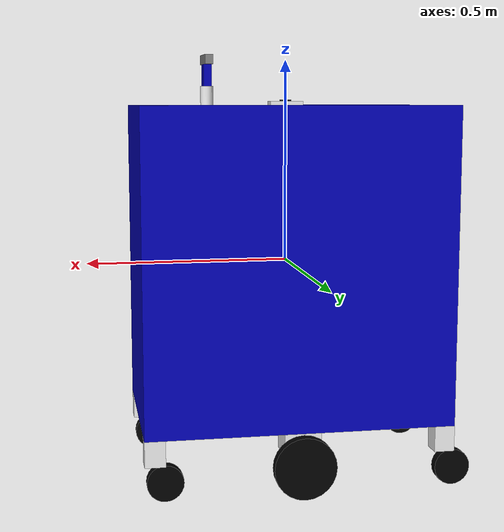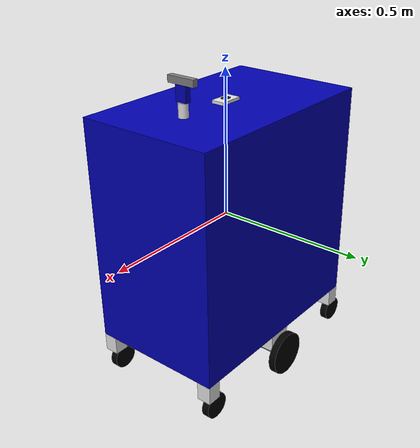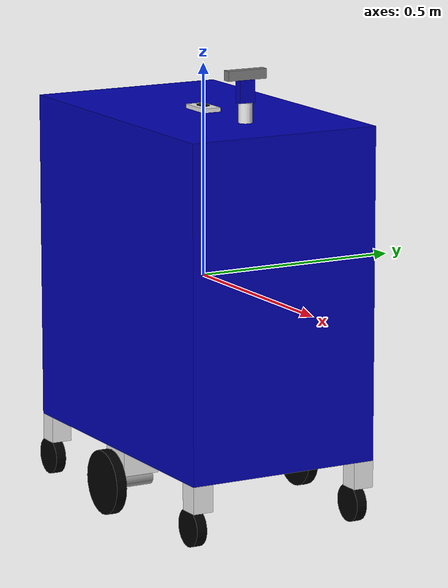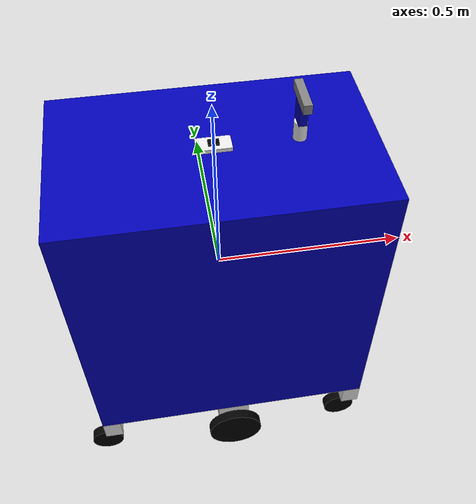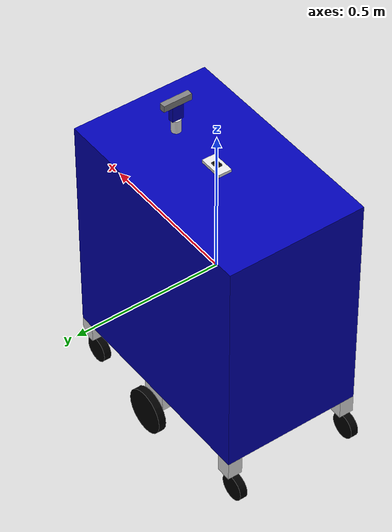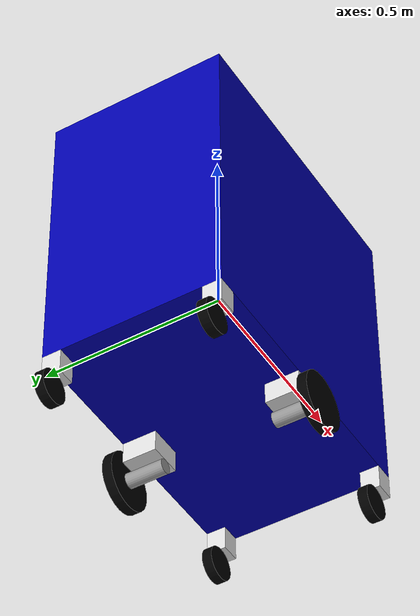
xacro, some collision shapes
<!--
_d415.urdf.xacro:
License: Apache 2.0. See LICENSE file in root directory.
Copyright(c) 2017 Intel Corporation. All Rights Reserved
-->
<?xml version="1.0"?>
<robot xmlns:xacro="http://ros.org/wiki/xacro" name="astro2">

  <xacro:include filename="$(find astro_state_publisher)/urdf/inertial.urdf.xacro"/>
  <xacro:include filename="$(find realsense2_camera)/urdf/_d415.urdf.xacro"/>

  <!-- Colours -->
  <material name="blue">
    <color rgba="0 0 0.7 1"/>
  </material>
  <material name="black">
    <color rgba="0 0 0 1"/>
  </material>
  <material name="silver">
    <color rgba="0.9 0.9 0.9 1"/>
  </material>
  <material name="iron">
    <color rgba="0.6 0.6 0.6 1"/>
  </material>
  <material name="brown">
    <color rgba="0.87 0.72 0.53 1"/>
  </material>

  <!-- BASE LINK -->
  <xacro:property name="base_h" value="0.780" />
  <xacro:property name="base_w" value="0.470" />
  <xacro:property name="base_d" value="0.760" />
  <xacro:property name="base_mass" value="40" />

  <link name="base_link">
    <visual>
      <geometry>
        <box size="${base_d} ${base_w} ${base_h}"/>
      </geometry>
      <material name="blue"/>
    </visual>
    <collision>
      <geometry>
        <box size="${base_d} ${base_w} ${base_h}"/>
      </geometry>
    </collision>
    <xacro:inertial_box m="${base_mass}" d="${base_d}" w="${base_w}" h="${base_h}"/>
  </link>

  <!-- CAMERA LINKS -->
  <xacro:property name="cam_sup_len" value="0.046" />
  <xacro:property name="cam_sup_rad" value="0.016" />
  <xacro:property name="cam_sup_mass" value="0.2" />
  <xacro:property name="cam_sup_xoffset" value="0.198" />

  <link name="camera_support_link">
    <visual>
      <geometry>
        <cylinder length="${cam_sup_len}" radius="${cam_sup_rad}"/>
      </geometry>
      <origin rpy="0 0 0" xyz="0 0 ${cam_sup_len/2}"/>
      <material name="silver"/>
    </visual>
    <collision>
      <geometry>
        <cylinder length="${cam_sup_len}" radius="${cam_sup_rad}"/>
      </geometry>
      <origin rpy="0 0 0" xyz="0 0 ${cam_sup_len/2}"/>
    </collision>
    <xacro:medium_inertial m="${cam_sup_mass}"/>
  </link>

  <joint name="camera_support_joint" type="fixed">
    <parent link="base_link"/>
    <child link="camera_support_link"/>
    <origin xyz="${cam_sup_xoffset} 0 ${base_h/2}"/>
  </joint>

  <xacro:property name="cam_serv_h" value="0.053" />
  <xacro:property name="cam_serv_w" value="0.04" />
  <xacro:property name="cam_serv_d" value="0.02" />
  <xacro:property name="cam_serv_mass" value="0.05" />

  <link name="camera_servo_link">
    <visual>
      <geometry>
        <box size="${cam_serv_d} ${cam_serv_w} ${cam_serv_h}"/>
      </geometry>
      <origin rpy="0 0 0" xyz="0 0 ${cam_serv_h/2}"/>
      <material name="blue"/>
    </visual>
    <collision>
      <geometry>
        <box size="${cam_serv_d} ${cam_serv_w} ${cam_serv_h}"/>
      </geometry>
      <origin rpy="0 0 0" xyz="0 0 ${cam_serv_h/2}"/>
    </collision>
    <xacro:small_inertial m="${cam_serv_mass}"/>
  </link>

  <joint name="camera_servo_joint" type="revolute">
    <axis xyz="0 0 1"/>
    <limit effort="1000.0" lower="-1.57" upper="1.57" velocity="0.5"/>
    <parent link="camera_support_link"/>
    <child link="camera_servo_link"/>
    <origin xyz="0 0 ${cam_sup_len}"/>
  </joint>

  <!-- CAMERA -->
  <xacro:sensor_d415 parent="camera_servo_link">
    <origin rpy="0 0 0" xyz="0 0 ${cam_serv_h}"/>
  </xacro:sensor_d415>

  <!-- IMU -->

  <xacro:property name="imu_sup_h" value="0.01" />
  <xacro:property name="imu_sup_w" value="0.045" />
  <xacro:property name="imu_sup_d" value="0.082" />
  <xacro:property name="imu_sup_mass" value="0.005" />

  <joint name="imu_sup_joint" type="fixed">
    <parent link="base_link"/>
    <child link="imu_sup_link"/>
    <origin xyz="0 0 ${base_h/2}"/>
  </joint>

   <link name="imu_sup_link">
    <visual>
      <geometry>
        <box size="${imu_sup_d} ${imu_sup_w} ${imu_sup_h}"/>
      </geometry>
      <origin rpy="0 0 0" xyz="0 0 ${imu_sup_h/2}"/>
      <material name="silver"/>
    </visual>
    <collision>
      <geometry>
        <box size="${imu_sup_d} ${imu_sup_w} ${imu_sup_h}"/>
      </geometry>
      <origin rpy="0 0 0" xyz="0 0 ${imu_sup_h/2}"/>
    </collision>
    <xacro:small_inertial m="${imu_sup_mass}"/>
  </link>

  <xacro:property name="imu_h" value="0.004" />
  <xacro:property name="imu_w" value="0.020" />
  <xacro:property name="imu_d" value="0.026" />
  <xacro:property name="imu_mass" value="0.001" />

  <joint name="imu_joint" type="fixed">
    <parent link="imu_sup_link"/>
    <child link="imu_link"/>
    <origin xyz="0 0 ${imu_sup_h + imu_h/2}"/>
  </joint>

   <link name="imu_link">
    <visual>
      <geometry>
        <box size="${imu_d} ${imu_w} ${imu_h}"/>
      </geometry>
      <origin rpy="0 0 0" xyz="0 0 0"/>
      <material name="black"/>
    </visual>
    <collision>
      <geometry>
        <box size="${imu_d} ${imu_w} ${imu_h}"/>
      </geometry>
      <origin rpy="0 0 0" xyz="0 0 0"/>
    </collision>
    <xacro:small_inertial m="${imu_mass}"/>
  </link>

  <!-- DRIVING WHEELS -->
  <xacro:property name="suspension_h" value="0.05715" />
  <xacro:property name="suspension_w" value="0.0889" />
  <xacro:property name="suspension_d" value="0.0889" />
  <xacro:property name="suspension_mass" value="1.5" />

  <xacro:macro name="susp_inertia">
    <xacro:inertial_box m="${suspension_mass}" d="${suspension_d}" w="${suspension_w}" h="${suspension_h}"/>
  </xacro:macro>

  <joint name="left_susp_joint" type="fixed">
    <parent link="base_link"/>
    <child link="left_susp_link"/>
    <origin xyz="0 ${(base_w/2) - (suspension_w/2)} ${(-1)*base_h/2}"/>
  </joint>

  <link name="left_susp_link">
    <visual>
      <geometry>
        <box size="${suspension_d} ${suspension_w} ${suspension_h}"/>
      </geometry>
      <origin rpy="0 0 0" xyz="0 0 ${(-1)*suspension_h/2}"/>
      <material name="silver"/>
    </visual>
    <collision>
      <geometry>
        <box size="${suspension_d} ${suspension_w} ${suspension_h}"/>
      </geometry>
      <origin rpy="0 0 0" xyz="0 0 ${(-1)*suspension_h/2}"/>
    </collision>
    <xacro:susp_inertia/>
  </link>

  <joint name="right_susp_joint" type="fixed">
    <parent link="base_link"/>
    <child link="right_susp_link"/>
    <origin xyz="0 ${-(base_w/2) + (suspension_w/2)} ${(-1)*base_h/2}"/>
  </joint>

  <link name="right_susp_link">
    <visual>
      <geometry>
        <box size="${suspension_d} ${suspension_w} ${suspension_h}"/>
      </geometry>
      <origin rpy="0 0 0" xyz="0 0 ${(-1)*suspension_h/2}"/>
      <material name="silver"/>
    </visual>
    <collision>
      <geometry>
        <box size="${suspension_d} ${suspension_w} ${suspension_h}"/>
      </geometry>
      <origin rpy="0 0 0" xyz="0 0 ${(-1)*suspension_h/2}"/>
    </collision>
    <xacro:susp_inertia/>
  </link>

  <!-- Amount the wheels are sticking out from the chassis -->
  <xacro:property name="wheel_offset" value="0.01" />

  <xacro:property name="motor_rad" value="0.01905" />
  <xacro:property name="motor_len" value="${suspension_w + wheel_offset}" />
  <xacro:property name="motor_mass" value="1.0" />

  <xacro:macro name="motor_inertia">
    <xacro:inertial_cylinder m="${motor_mass}" r="${motor_rad}" l="${motor_len}"/>
  </xacro:macro>

  <joint name="left_motor_joint" type="fixed">
    <parent link="left_susp_link"/>
    <child link="left_motor_link"/>
    <origin xyz="0 ${wheel_offset/2} ${-suspension_h}"/>
  </joint>

  <link name="left_motor_link">
    <visual>
      <geometry>
        <cylinder length="${motor_len}" radius="${motor_rad}"/>
      </geometry>
      <origin rpy="${pi/2} 0 0" xyz="0 0 ${-motor_rad}"/>
      <material name="iron"/>
    </visual>
    <collision>
      <geometry>
        <cylinder length="${motor_len}" radius="${motor_rad}"/>
      </geometry>
      <origin rpy="${pi/2} 0 0" xyz="0 0 ${-motor_rad}"/>
    </collision>
    <xacro:motor_inertia/>
  </link>

  <joint name="right_motor_joint" type="fixed">
    <parent link="right_susp_link"/>
    <child link="right_motor_link"/>
    <origin xyz="0 ${-wheel_offset/2} ${-suspension_h}"/>
  </joint>

  <link name="right_motor_link">
    <visual>
      <geometry>
        <cylinder length="${motor_len}" radius="${motor_rad}"/>
      </geometry>
      <origin rpy="${-pi/2} 0 0" xyz="0 0 ${-motor_rad}"/>
      <material name="iron"/>
    </visual>
    <collision>
      <geometry>
        <cylinder length="${motor_len}" radius="${motor_rad}"/>
      </geometry>
      <origin rpy="${-pi/2} 0 0" xyz="0 0 ${-motor_rad}"/>
    </collision>
    <xacro:motor_inertia/>
  </link>

  <xacro:property name="wheel_rad" value="0.0762" />
  <xacro:property name="wheel_len" value="0.0254" />
  <xacro:property name="wheel_mass" value="0.3" />

  <xacro:macro name="wheel_inertia">
    <xacro:inertial_cylinder m="${wheel_mass}" r="${wheel_rad}" l="${wheel_len}"/>
  </xacro:macro>

  <joint name="left_wheel_joint" type="continuous">
    <axis xyz="0 1 0"/>
    <parent link="left_motor_link"/>
    <child link="left_wheel_link"/>
    <origin rpy="0 0 0" xyz="0 ${motor_len/2} ${-motor_rad}"/>
  </joint>

  <link name="left_wheel_link">
    <visual>
      <geometry>
        <cylinder length="${wheel_len}" radius="${wheel_rad}"/>
      </geometry>
      <origin rpy="${pi/2} 0 0" xyz="0 ${wheel_len/2} 0"/>
      <material name="black"/>
    </visual>
    <collision>
      <geometry>
        <cylinder length="${wheel_len}" radius="${wheel_rad}"/>
      </geometry>
      <origin rpy="${pi/2} 0 0" xyz="0 ${wheel_len/2} 0"/>
    </collision>
    <xacro:wheel_inertia/>
  </link>

  <joint name="right_wheel_joint" type="continuous">
    <axis xyz="0 1 0"/>
    <parent link="right_motor_link"/>
    <child link="right_wheel_link"/>
    <origin rpy="0 0 0" xyz="0 ${-motor_len/2} ${-motor_rad}"/>
  </joint>

  <link name="right_wheel_link">
    <visual>
      <geometry>
        <cylinder length="${wheel_len}" radius="${wheel_rad}"/>
      </geometry>
      <origin rpy="${-pi/2} 0 0" xyz="0 ${-wheel_len/2} 0"/>
      <material name="black"/>
    </visual>
    <collision>
      <geometry>
        <cylinder length="${wheel_len}" radius="${wheel_rad}"/>
      </geometry>
      <origin rpy="${-pi/2} 0 0" xyz="0 ${-wheel_len/2} 0"/>
    </collision>
    <xacro:wheel_inertia/>
  </link>

  <!-- CASTERS -->
  <xacro:property name="caster_support_h" value="0.0635" />
  <xacro:property name="caster_support_w" value="0.05" />
  <xacro:property name="caster_support_d" value="0.05" />
  <xacro:property name="caster_support_mass" value="1.0" />

  <xacro:property name="caster_wheel_rad" value="0.04445" />
  <xacro:property name="caster_wheel_len" value="0.0254" />
  <xacro:property name="caster_wheel_mass" value="0.2" />

  <xacro:macro name="caster_wheel_inertia">
    <xacro:inertial_cylinder m="${caster_wheel_mass}" r="${caster_wheel_rad}" l="${caster_wheel_len}"/>
  </xacro:macro>

  <!-- front right -->
  <joint name="caster_sup_front_right_joint" type="fixed">
    <parent link="base_link"/>
    <child link="caster_sup_front_right_link"/>
    <origin rpy="0 0 0" xyz="${base_d/2 - caster_support_d/2} ${-base_w/2 + caster_support_w/2} ${-base_h/2}"/>
  </joint>

  <link name="caster_sup_front_right_link">
    <visual>
      <geometry>
        <box size="${caster_support_d} ${caster_support_w} ${caster_support_h}"/>
      </geometry>
      <origin rpy="0 0 0" xyz="0 0 ${-caster_support_h/2}"/>
      <material name="silver"/>
    </visual>
    <collision>
      <geometry>
        <box size="${caster_support_d} ${caster_support_w} ${caster_support_h}"/>
      </geometry>
      <origin rpy="0 0 0" xyz="0 0 ${-caster_support_h/2}"/>
    </collision>
    <xacro:medium_inertial m="${caster_support_mass}"/>
  </link>

  <joint name="caster_wheel_front_right_joint" type="fixed">
    <parent link="caster_sup_front_right_link"/>
    <child link="caster_wheel_front_right_link"/>
    <origin rpy="0 0 0" xyz="${-caster_support_d/2} 0 ${-caster_support_h-caster_wheel_rad}"/>
  </joint>

  <link name="caster_wheel_front_right_link">
    <visual>
      <geometry>
        <cylinder length="${caster_wheel_len}" radius="${caster_wheel_rad}"/>
      </geometry>
      <origin rpy="${-pi/2} 0 0" xyz="0 0 0"/>
      <material name="black"/>
    </visual>
    <collision>
      <geometry>
        <cylinder length="${caster_wheel_len}" radius="${caster_wheel_rad}"/>
      </geometry>
      <origin rpy="${-pi/2} 0 0" xyz="0 0 0"/>
    </collision>
    <xacro:caster_wheel_inertia/>
  </link>

  <!-- front left -->
  <joint name="caster_sup_front_left_joint" type="fixed">
    <parent link="base_link"/>
    <child link="caster_sup_front_left_link"/>
    <origin rpy="0 0 0" xyz="${base_d/2 - caster_support_d/2} ${base_w/2 - caster_support_w/2} ${-base_h/2}"/>
  </joint>

  <link name="caster_sup_front_left_link">
    <visual>
      <geometry>
        <box size="${caster_support_d} ${caster_support_w} ${caster_support_h}"/>
      </geometry>
      <origin rpy="0 0 0" xyz="0 0 ${-caster_support_h/2}"/>
      <material name="silver"/>
    </visual>
    <collision>
      <geometry>
        <box size="${caster_support_d} ${caster_support_w} ${caster_support_h}"/>
      </geometry>
      <origin rpy="0 0 0" xyz="0 0 ${-caster_support_h/2}"/>
    </collision>
    <xacro:medium_inertial m="${caster_support_mass}"/>
  </link>

  <joint name="caster_wheel_front_left_joint" type="fixed">
    <parent link="caster_sup_front_left_link"/>
    <child link="caster_wheel_front_left_link"/>
    <origin rpy="0 0 0" xyz="${-caster_support_d/2} 0 ${-caster_support_h-caster_wheel_rad}"/>
  </joint>

  <link name="caster_wheel_front_left_link">
    <visual>
      <geometry>
        <cylinder length="${caster_wheel_len}" radius="${caster_wheel_rad}"/>
      </geometry>
      <origin rpy="${pi/2} 0 0" xyz="0 0 0"/>
      <material name="black"/>
    </visual>
    <collision>
      <geometry>
        <cylinder length="${caster_wheel_len}" radius="${caster_wheel_rad}"/>
      </geometry>
      <origin rpy="${pi/2} 0 0" xyz="0 0 0"/>
    </collision>
    <xacro:caster_wheel_inertia/>
  </link>

  <!-- back left -->
  <joint name="caster_sup_back_left_joint" type="fixed">
    <parent link="base_link"/>
    <child link="caster_sup_back_left_link"/>
    <origin rpy="0 0 0" xyz="${-base_d/2 + caster_support_d/2} ${base_w/2 - caster_support_w/2} ${-base_h/2}"/>
  </joint>

  <link name="caster_sup_back_left_link">
    <visual>
      <geometry>
        <box size="${caster_support_d} ${caster_support_w} ${caster_support_h}"/>
      </geometry>
      <origin rpy="0 0 0" xyz="0 0 ${-caster_support_h/2}"/>
      <material name="silver"/>
    </visual>
    <collision>
      <geometry>
        <box size="${caster_support_d} ${caster_support_w} ${caster_support_h}"/>
      </geometry>
      <origin rpy="0 0 0" xyz="0 0 ${-caster_support_h/2}"/>
    </collision>
    <xacro:medium_inertial m="${caster_support_mass}"/>
  </link>

  <joint name="caster_wheel_back_left_joint" type="fixed">
    <parent link="caster_sup_back_left_link"/>
    <child link="caster_wheel_back_left_link"/>
    <origin rpy="0 0 0" xyz="${-caster_support_d/2} 0 ${-caster_support_h-caster_wheel_rad}"/>
  </joint>

  <link name="caster_wheel_back_left_link">
    <visual>
      <geometry>
        <cylinder length="${caster_wheel_len}" radius="${caster_wheel_rad}"/>
      </geometry>
      <origin rpy="${pi/2} 0 0" xyz="0 0 0"/>
      <material name="black"/>
    </visual>
    <collision>
      <geometry>
        <cylinder length="${caster_wheel_len}" radius="${caster_wheel_rad}"/>
      </geometry>
      <origin rpy="${pi/2} 0 0" xyz="0 0 0"/>
    </collision>
    <xacro:caster_wheel_inertia/>
  </link>

  <!-- back right -->
  <joint name="caster_sup_back_right_joint" type="fixed">
    <parent link="base_link"/>
    <child link="caster_sup_back_right_link"/>
    <origin rpy="0 0 0" xyz="${-base_d/2 + caster_support_d/2} ${-base_w/2 + caster_support_w/2} ${-base_h/2}"/>
  </joint>

  <link name="caster_sup_back_right_link">
    <visual>
      <geometry>
        <box size="${caster_support_d} ${caster_support_w} ${caster_support_h}"/>
      </geometry>
      <origin rpy="0 0 0" xyz="0 0 ${-caster_support_h/2}"/>
      <material name="silver"/>
    </visual>
    <collision>
      <geometry>
        <box size="${caster_support_d} ${caster_support_w} ${caster_support_h}"/>
      </geometry>
      <origin rpy="0 0 0" xyz="0 0 ${-caster_support_h/2}"/>
    </collision>
    <xacro:medium_inertial m="${caster_support_mass}"/>
  </link>

  <joint name="caster_wheel_back_right_joint" type="fixed">
    <parent link="caster_sup_back_right_link"/>
    <child link="caster_wheel_back_right_link"/>
    <origin rpy="0 0 0" xyz="${-caster_support_d/2} 0 ${-caster_support_h-caster_wheel_rad}"/>
  </joint>

  <link name="caster_wheel_back_right_link">
    <visual>
      <geometry>
        <cylinder length="${caster_wheel_len}" radius="${caster_wheel_rad}"/>
      </geometry>
      <origin rpy="${-pi/2} 0 0" xyz="0 0 0"/>
      <material name="black"/>
    </visual>
    <collision>
      <geometry>
        <cylinder length="${caster_wheel_len}" radius="${caster_wheel_rad}"/>
      </geometry>
      <origin rpy="${-pi/2} 0 0" xyz="0 0 0"/>
    </collision>
    <xacro:caster_wheel_inertia/>
  </link>

</robot>

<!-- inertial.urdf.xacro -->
<robot xmlns:xacro="http://ros.org/wiki/xacro" name="astro_proto">

	<!-- APPROXIMATIONS -->
    <xacro:macro name="medium_inertial" params="m">
        <inertial>
                <mass value="${m}" />
                <inertia ixx="0.003" ixy="0.0" ixz="0.0"
                     iyy="0.003" iyz="0.0"
                     izz="0.003" />
        </inertial>
    </xacro:macro>

    <xacro:macro name="small_inertial" params="m">
        <inertial>
                <mass value="${m}" />
                <inertia ixx="0.0005" ixy="0.0" ixz="0.0"
                     iyy="0.0005" iyz="0.0"
                     izz="0.0005" />
        </inertial>
    </xacro:macro>

    <!-- BOX -->
    <!-- mass depth width height -->
    <xacro:macro name="inertial_box" params="m d w h">
        <inertial>
                <mass value="${m}" />
                <inertia ixx="${0.08333333333*m*(h*h + d*d)}" ixy="0.0" ixz="0.0"
                     	 iyy="${0.08333333333*m*(w*w + d*d)}" iyz="0.0"
                     	 izz="${0.08333333333*m*(w*w + h*h)}" />
        </inertial>
    </xacro:macro>

    <!-- CYLINDER -->
    <!-- mass radius length -->
    <xacro:macro name="inertial_cylinder" params="m r l">
    	<xacro:property name="xxyy" value="${0.08333333333*m*(3*r*r + l*l)}"/>
        <inertial>
                <mass value="${m}" />
                <inertia ixx="${xxyy}" ixy="0.0" ixz="0.0"
                     	 iyy="${xxyy}" iyz="0.0"
                     	 izz="${0.08333333333*m*r*r}" />
        </inertial>
    </xacro:macro>
</robot>

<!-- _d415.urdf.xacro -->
<robot name="sensor_d415" xmlns:xacro="http://ros.org/wiki/xacro">
  <xacro:macro name="sensor_d415" params="parent *origin">
    <xacro:property name="M_PI" value="3.1415926535897931" />

    <!-- The following values are approximate, and the camera node
     publishing TF values with actual calibrated camera extrinsic values -->
    <xacro:property name="d415_cam_depth_to_left_ir_offset" value="0.0"/>
    <xacro:property name="d415_cam_depth_to_right_ir_offset" value="-0.055"/>
    <xacro:property name="d415_cam_depth_to_color_offset" value="0.015"/>

    <!-- The following values model the aluminum peripherial case for the
  	d415 camera, with the camera joint represented by the actual
  	peripherial camera tripod mount -->
    <xacro:property name="d415_cam_width" value="0.099"/>
    <xacro:property name="d415_cam_height" value="0.023"/>
    <xacro:property name="d415_cam_depth" value="0.02005"/>
    <xacro:property name="d415_cam_mount_from_center_offset" value="0.00987"/>

    <!-- The following offset is relative the the physical d415 camera peripherial
  	camera tripod mount -->
    <xacro:property name="d415_cam_depth_px" value="${d415_cam_mount_from_center_offset}"/>
    <xacro:property name="d415_cam_depth_py" value="0.020"/>
    <xacro:property name="d415_cam_depth_pz" value="${d415_cam_height/2}"/>

    <material name="aluminum">
	     <color rgba="0.5 0.5 0.5 1"/>
    </material>

    <!-- camera body, with origin at bottom screw mount -->
    <joint name="camera_joint" type="fixed">
      <xacro:insert_block name="origin" />
      <parent link="${parent}"/>
      <child link="camera_link" />
    </joint>

    <link name="camera_link">
      <visual>
      <origin xyz="${d415_cam_mount_from_center_offset} 0.0 ${d415_cam_height/2}" rpy="${M_PI/2} 0 ${M_PI/2}"/>
        <geometry>
	         <mesh filename="package://realsense2_camera/meshes/d415.stl" />
        </geometry>
        <material name="aluminum"/>
      </visual>
      <collision>
        <origin xyz="0.0 0.0 ${d415_cam_height/2}" rpy="0 0 0"/>
        <geometry>
        <box size="${d415_cam_depth} ${d415_cam_width} ${d415_cam_height}"/>
        </geometry>
      </collision>
      <inertial>
        <!-- The following are not reliable values, and should not be used for modeling -->
        <mass value="0.564" />
        <origin xyz="0 0 0" />
        <inertia ixx="0.003881243" ixy="0.0" ixz="0.0" iyy="0.000498940" iyz="0.0" izz="0.003879257" />
      </inertial>
    </link>

    <!-- camera depth joints and links -->
    <joint name="camera_depth_joint" type="fixed">
      <origin xyz="${d415_cam_depth_px} ${d415_cam_depth_py} ${d415_cam_depth_pz}" rpy="0 0 0"/>
      <parent link="camera_link"/>
      <child link="camera_depth_frame" />
    </joint>
    <link name="camera_depth_frame"/>

    <joint name="camera_depth_optical_joint" type="fixed">
      <origin xyz="0 0 0" rpy="${-M_PI/2} 0 ${-M_PI/2}" />
      <parent link="camera_depth_frame" />
      <child link="camera_depth_optical_frame" />
    </joint>
    <link name="camera_depth_optical_frame"/>

    <!-- camera left IR joints and links -->
    <joint name="camera_left_ir_joint" type="fixed">
      <origin xyz="0 ${d415_cam_depth_to_left_ir_offset} 0" rpy="0 0 0" />
      <parent link="camera_depth_frame" />
      <child link="camera_left_ir_frame" />
    </joint>
    <link name="camera_left_ir_frame"/>

    <joint name="camera_left_ir_optical_joint" type="fixed">
      <origin xyz="0 0 0" rpy="${-M_PI/2} 0 ${-M_PI/2}" />
      <parent link="camera_left_ir_frame" />
      <child link="camera_left_ir_optical_frame" />
    </joint>
    <link name="camera_left_ir_optical_frame"/>

    <!-- camera right IR joints and links -->
    <joint name="camera_right_ir_joint" type="fixed">
      <origin xyz="0 ${d415_cam_depth_to_right_ir_offset} 0" rpy="0 0 0" />
      <parent link="camera_depth_frame" />
      <child link="camera_right_ir_frame" />
    </joint>
    <link name="camera_right_ir_frame"/>

    <joint name="camera_right_ir_optical_joint" type="fixed">
      <origin xyz="0 0 0" rpy="${-M_PI/2} 0 ${-M_PI/2}" />
      <parent link="camera_right_ir_frame" />
      <child link="camera_right_ir_optical_frame" />
    </joint>
    <link name="camera_right_ir_optical_frame"/>

    <!-- camera color joints and links -->
    <joint name="camera_color_joint" type="fixed">
      <origin xyz="0 ${d415_cam_depth_to_color_offset} 0" rpy="0 0 0" />
      <parent link="camera_depth_frame" />
      <child link="camera_color_frame" />
    </joint>
    <link name="camera_color_frame"/>

    <joint name="camera_color_optical_joint" type="fixed">
      <origin xyz="0 0 0" rpy="${-M_PI/2} 0 ${-M_PI/2}" />
      <parent link="camera_color_frame" />
      <child link="camera_color_optical_frame" />
    </joint>
    <link name="camera_color_optical_frame"/>
  </xacro:macro>
</robot>
